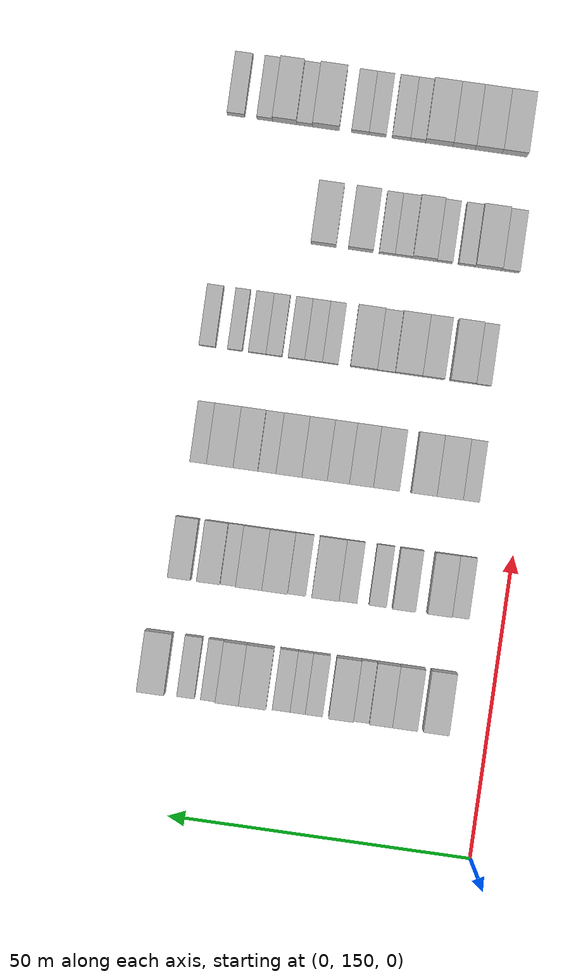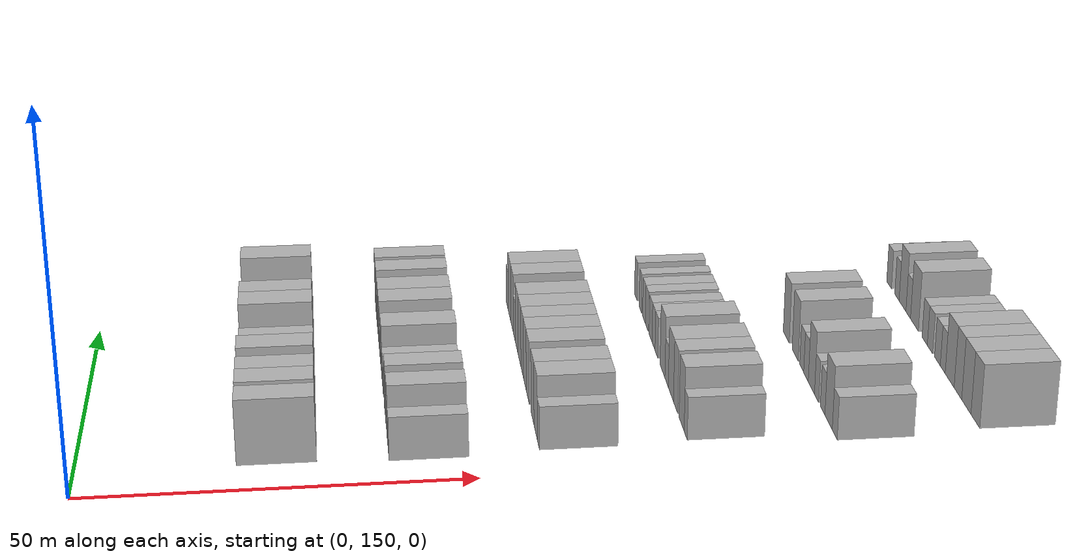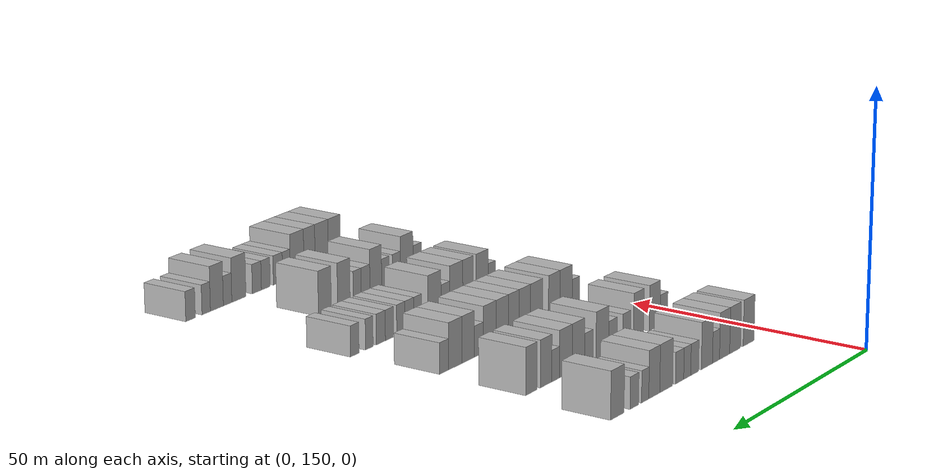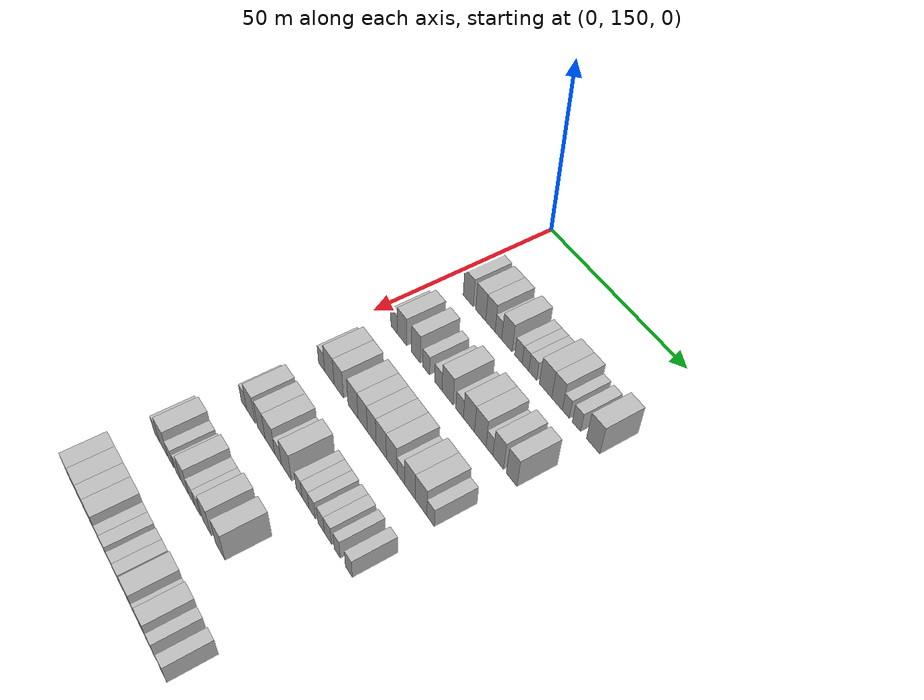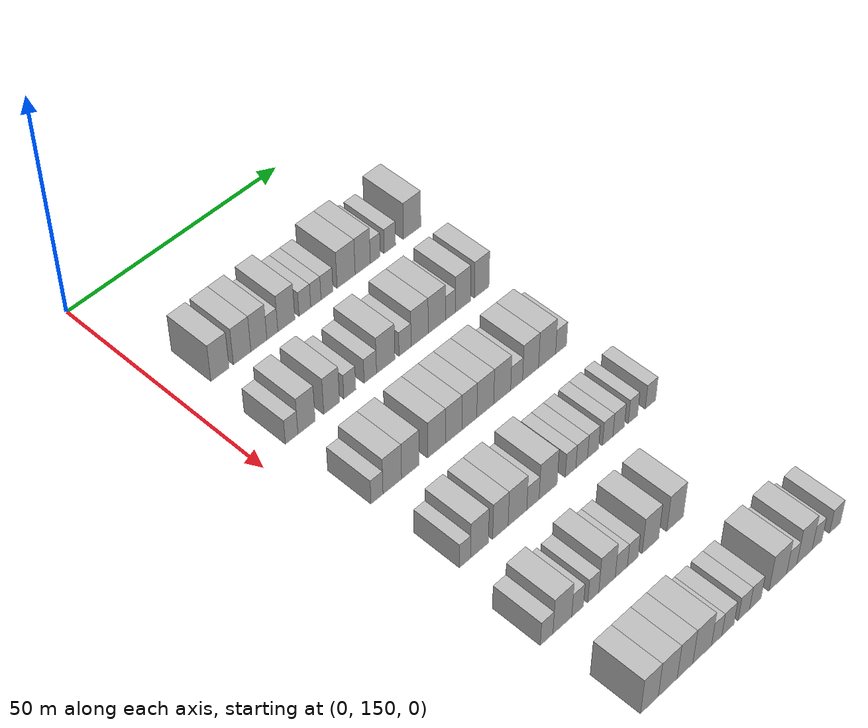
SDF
<sdf version="1.6">
 <world name="default">
  <model name="building_119">
   <static>1</static>
   <pose>25.0000 158.7007 0 0.000000 0.000000 0.000000</pose>
   <link name="link">
    <pose>0 0 4.50 0 0 0</pose>
    <collision name="collision"><geometry><box><size>10.0000 4.1789 9.0000</size></box></geometry></collision>
    <visual name="visual">
     <cast_shadows>0</cast_shadows>
     <geometry><box><size>10.0000 4.1789 9.0000</size></box></geometry>
     <material>
      <script>
       <uri>model://HANNAS_wall/materials/scripts</uri>
       <uri>model://HANNAS_wall/materials/textures</uri>
       <name>vrc/HANNAS_wall</name>
      </script>
     </material>
    </visual>
   </link>
  </model>
  <model name="building_120">
   <static>1</static>
   <pose>25.0000 163.8304 0 0.000000 0.000000 0.000000</pose>
   <link name="link">
    <pose>0 0 4.50 0 0 0</pose>
    <collision name="collision"><geometry><box><size>10.0000 4.0805 9.0000</size></box></geometry></collision>
    <visual name="visual">
     <cast_shadows>0</cast_shadows>
     <geometry><box><size>10.0000 4.0805 9.0000</size></box></geometry>
     <material>
      <script>
       <uri>model://HANNAS_wall/materials/scripts</uri>
       <uri>model://HANNAS_wall/materials/textures</uri>
       <name>vrc/HANNAS_wall</name>
      </script>
     </material>
    </visual>
   </link>
  </model>
  <model name="building_121">
   <static>1</static>
   <pose>25.0000 167.7491 0 0.000000 0.000000 0.000000</pose>
   <link name="link">
    <pose>0 0 4.50 0 0 0</pose>
    <collision name="collision"><geometry><box><size>10.0000 3.7569 9.0000</size></box></geometry></collision>
    <visual name="visual">
     <cast_shadows>0</cast_shadows>
     <geometry><box><size>10.0000 3.7569 9.0000</size></box></geometry>
     <material>
      <script>
       <uri>model://HANNAS_wall/materials/scripts</uri>
       <uri>model://HANNAS_wall/materials/textures</uri>
       <name>vrc/HANNAS_wall</name>
      </script>
     </material>
    </visual>
   </link>
  </model>
  <model name="building_122">
   <static>1</static>
   <pose>25.0000 170.9265 0 0.000000 0.000000 0.000000</pose>
   <link name="link">
    <pose>0 0 3.00 0 0 0</pose>
    <collision name="collision"><geometry><box><size>10.0000 2.5980 6.0000</size></box></geometry></collision>
    <visual name="visual">
     <cast_shadows>0</cast_shadows>
     <geometry><box><size>10.0000 2.5980 6.0000</size></box></geometry>
     <material>
      <script>
       <uri>model://HANNAS_wall/materials/scripts</uri>
       <uri>model://HANNAS_wall/materials/textures</uri>
       <name>vrc/HANNAS_wall</name>
      </script>
     </material>
    </visual>
   </link>
  </model>
  <model name="building_123">
   <static>1</static>
   <pose>25.0000 174.2566 0 0.000000 0.000000 0.000000</pose>
   <link name="link">
    <pose>0 0 4.50 0 0 0</pose>
    <collision name="collision"><geometry><box><size>10.0000 4.0622 9.0000</size></box></geometry></collision>
    <visual name="visual">
     <cast_shadows>0</cast_shadows>
     <geometry><box><size>10.0000 4.0622 9.0000</size></box></geometry>
     <material>
      <script>
       <uri>model://HANNAS_wall/materials/scripts</uri>
       <uri>model://HANNAS_wall/materials/textures</uri>
       <name>vrc/HANNAS_wall</name>
      </script>
     </material>
    </visual>
   </link>
  </model>
  <model name="building_124">
   <static>1</static>
   <pose>25.0000 178.7006 0 0.000000 0.000000 0.000000</pose>
   <link name="link">
    <pose>0 0 3.00 0 0 0</pose>
    <collision name="collision"><geometry><box><size>10.0000 2.8257 6.0000</size></box></geometry></collision>
    <visual name="visual">
     <cast_shadows>0</cast_shadows>
     <geometry><box><size>10.0000 2.8257 6.0000</size></box></geometry>
     <material>
      <script>
       <uri>model://HANNAS_wall/materials/scripts</uri>
       <uri>model://HANNAS_wall/materials/textures</uri>
       <name>vrc/HANNAS_wall</name>
      </script>
     </material>
    </visual>
   </link>
  </model>
  <model name="building_125">
   <static>1</static>
   <pose>25.0000 181.3581 0 0.000000 0.000000 0.000000</pose>
   <link name="link">
    <pose>0 0 3.00 0 0 0</pose>
    <collision name="collision"><geometry><box><size>10.0000 2.4894 6.0000</size></box></geometry></collision>
    <visual name="visual">
     <cast_shadows>0</cast_shadows>
     <geometry><box><size>10.0000 2.4894 6.0000</size></box></geometry>
     <material>
      <script>
       <uri>model://HANNAS_wall/materials/scripts</uri>
       <uri>model://HANNAS_wall/materials/textures</uri>
       <name>vrc/HANNAS_wall</name>
      </script>
     </material>
    </visual>
   </link>
  </model>
  <model name="building_126">
   <static>1</static>
   <pose>25.0000 184.0690 0 0.000000 0.000000 0.000000</pose>
   <link name="link">
    <pose>0 0 3.00 0 0 0</pose>
    <collision name="collision"><geometry><box><size>10.0000 2.9324 6.0000</size></box></geometry></collision>
    <visual name="visual">
     <cast_shadows>0</cast_shadows>
     <geometry><box><size>10.0000 2.9324 6.0000</size></box></geometry>
     <material>
      <script>
       <uri>model://HANNAS_wall/materials/scripts</uri>
       <uri>model://HANNAS_wall/materials/textures</uri>
       <name>vrc/HANNAS_wall</name>
      </script>
     </material>
    </visual>
   </link>
  </model>
  <model name="building_127">
   <static>1</static>
   <pose>25.0000 188.7733 0 0.000000 0.000000 0.000000</pose>
   <link name="link">
    <pose>0 0 4.50 0 0 0</pose>
    <collision name="collision"><geometry><box><size>10.0000 4.4763 9.0000</size></box></geometry></collision>
    <visual name="visual">
     <cast_shadows>0</cast_shadows>
     <geometry><box><size>10.0000 4.4763 9.0000</size></box></geometry>
     <material>
      <script>
       <uri>model://HANNAS_wall/materials/scripts</uri>
       <uri>model://HANNAS_wall/materials/textures</uri>
       <name>vrc/HANNAS_wall</name>
      </script>
     </material>
    </visual>
   </link>
  </model>
  <model name="building_128">
   <static>1</static>
   <pose>25.0000 192.9053 0 0.000000 0.000000 0.000000</pose>
   <link name="link">
    <pose>0 0 4.50 0 0 0</pose>
    <collision name="collision"><geometry><box><size>10.0000 3.7876 9.0000</size></box></geometry></collision>
    <visual name="visual">
     <cast_shadows>0</cast_shadows>
     <geometry><box><size>10.0000 3.7876 9.0000</size></box></geometry>
     <material>
      <script>
       <uri>model://HANNAS_wall/materials/scripts</uri>
       <uri>model://HANNAS_wall/materials/textures</uri>
       <name>vrc/HANNAS_wall</name>
      </script>
     </material>
    </visual>
   </link>
  </model>
  <model name="building_129">
   <static>1</static>
   <pose>25.0000 196.0422 0 0.000000 0.000000 0.000000</pose>
   <link name="link">
    <pose>0 0 3.00 0 0 0</pose>
    <collision name="collision"><geometry><box><size>10.0000 2.4862 6.0000</size></box></geometry></collision>
    <visual name="visual">
     <cast_shadows>0</cast_shadows>
     <geometry><box><size>10.0000 2.4862 6.0000</size></box></geometry>
     <material>
      <script>
       <uri>model://HANNAS_wall/materials/scripts</uri>
       <uri>model://HANNAS_wall/materials/textures</uri>
       <name>vrc/HANNAS_wall</name>
      </script>
     </material>
    </visual>
   </link>
  </model>
  <model name="building_130">
   <static>1</static>
   <pose>25.0000 199.7295 0 0.000000 0.000000 0.000000</pose>
   <link name="link">
    <pose>0 0 3.00 0 0 0</pose>
    <collision name="collision"><geometry><box><size>10.0000 2.8885 6.0000</size></box></geometry></collision>
    <visual name="visual">
     <cast_shadows>0</cast_shadows>
     <geometry><box><size>10.0000 2.8885 6.0000</size></box></geometry>
     <material>
      <script>
       <uri>model://HANNAS_wall/materials/scripts</uri>
       <uri>model://HANNAS_wall/materials/textures</uri>
       <name>vrc/HANNAS_wall</name>
      </script>
     </material>
    </visual>
   </link>
  </model>
  <model name="building_131">
   <static>1</static>
   <pose>25.0000 205.4155 0 0.000000 0.000000 0.000000</pose>
   <link name="link">
    <pose>0 0 4.50 0 0 0</pose>
    <collision name="collision"><geometry><box><size>10.0000 4.4834 9.0000</size></box></geometry></collision>
    <visual name="visual">
     <cast_shadows>0</cast_shadows>
     <geometry><box><size>10.0000 4.4834 9.0000</size></box></geometry>
     <material>
      <script>
       <uri>model://HANNAS_wall/materials/scripts</uri>
       <uri>model://HANNAS_wall/materials/textures</uri>
       <name>vrc/HANNAS_wall</name>
      </script>
     </material>
    </visual>
   </link>
  </model>
  <model name="building_277">
   <static>1</static>
   <pose>44.0000 157.3566 0 0.000000 0.000000 0.000000</pose>
   <link name="link">
    <pose>0 0 3.00 0 0 0</pose>
    <collision name="collision"><geometry><box><size>10.0000 2.8651 6.0000</size></box></geometry></collision>
    <visual name="visual">
     <cast_shadows>0</cast_shadows>
     <geometry><box><size>10.0000 2.8651 6.0000</size></box></geometry>
     <material>
      <script>
       <uri>model://HANNAS_wall/materials/scripts</uri>
       <uri>model://HANNAS_wall/materials/textures</uri>
       <name>vrc/HANNAS_wall</name>
      </script>
     </material>
    </visual>
   </link>
  </model>
  <model name="building_278">
   <static>1</static>
   <pose>44.0000 160.7823 0 0.000000 0.000000 0.000000</pose>
   <link name="link">
    <pose>0 0 4.50 0 0 0</pose>
    <collision name="collision"><geometry><box><size>10.0000 3.9865 9.0000</size></box></geometry></collision>
    <visual name="visual">
     <cast_shadows>0</cast_shadows>
     <geometry><box><size>10.0000 3.9865 9.0000</size></box></geometry>
     <material>
      <script>
       <uri>model://HANNAS_wall/materials/scripts</uri>
       <uri>model://HANNAS_wall/materials/textures</uri>
       <name>vrc/HANNAS_wall</name>
      </script>
     </material>
    </visual>
   </link>
  </model>
  <model name="building_279">
   <static>1</static>
   <pose>44.0000 166.6259 0 0.000000 0.000000 0.000000</pose>
   <link name="link">
    <pose>0 0 4.50 0 0 0</pose>
    <collision name="collision"><geometry><box><size>10.0000 3.7007 9.0000</size></box></geometry></collision>
    <visual name="visual">
     <cast_shadows>0</cast_shadows>
     <geometry><box><size>10.0000 3.7007 9.0000</size></box></geometry>
     <material>
      <script>
       <uri>model://HANNAS_wall/materials/scripts</uri>
       <uri>model://HANNAS_wall/materials/textures</uri>
       <name>vrc/HANNAS_wall</name>
      </script>
     </material>
    </visual>
   </link>
  </model>
  <model name="building_280">
   <static>1</static>
   <pose>44.0000 170.8899 0 0.000000 0.000000 0.000000</pose>
   <link name="link">
    <pose>0 0 3.00 0 0 0</pose>
    <collision name="collision"><geometry><box><size>10.0000 2.8272 6.0000</size></box></geometry></collision>
    <visual name="visual">
     <cast_shadows>0</cast_shadows>
     <geometry><box><size>10.0000 2.8272 6.0000</size></box></geometry>
     <material>
      <script>
       <uri>model://HANNAS_wall/materials/scripts</uri>
       <uri>model://HANNAS_wall/materials/textures</uri>
       <name>vrc/HANNAS_wall</name>
      </script>
     </material>
    </visual>
   </link>
  </model>
  <model name="building_281">
   <static>1</static>
   <pose>44.0000 175.7847 0 0.000000 0.000000 0.000000</pose>
   <link name="link">
    <pose>0 0 3.00 0 0 0</pose>
    <collision name="collision"><geometry><box><size>10.0000 2.9625 6.0000</size></box></geometry></collision>
    <visual name="visual">
     <cast_shadows>0</cast_shadows>
     <geometry><box><size>10.0000 2.9625 6.0000</size></box></geometry>
     <material>
      <script>
       <uri>model://HANNAS_wall/materials/scripts</uri>
       <uri>model://HANNAS_wall/materials/textures</uri>
       <name>vrc/HANNAS_wall</name>
      </script>
     </material>
    </visual>
   </link>
  </model>
  <model name="building_282">
   <static>1</static>
   <pose>44.0000 179.4912 0 0.000000 0.000000 0.000000</pose>
   <link name="link">
    <pose>0 0 4.50 0 0 0</pose>
    <collision name="collision"><geometry><box><size>10.0000 4.4505 9.0000</size></box></geometry></collision>
    <visual name="visual">
     <cast_shadows>0</cast_shadows>
     <geometry><box><size>10.0000 4.4505 9.0000</size></box></geometry>
     <material>
      <script>
       <uri>model://HANNAS_wall/materials/scripts</uri>
       <uri>model://HANNAS_wall/materials/textures</uri>
       <name>vrc/HANNAS_wall</name>
      </script>
     </material>
    </visual>
   </link>
  </model>
  <model name="building_283">
   <static>1</static>
   <pose>44.0000 184.1906 0 0.000000 0.000000 0.000000</pose>
   <link name="link">
    <pose>0 0 3.00 0 0 0</pose>
    <collision name="collision"><geometry><box><size>10.0000 2.9483 6.0000</size></box></geometry></collision>
    <visual name="visual">
     <cast_shadows>0</cast_shadows>
     <geometry><box><size>10.0000 2.9483 6.0000</size></box></geometry>
     <material>
      <script>
       <uri>model://HANNAS_wall/materials/scripts</uri>
       <uri>model://HANNAS_wall/materials/textures</uri>
       <name>vrc/HANNAS_wall</name>
      </script>
     </material>
    </visual>
   </link>
  </model>
  <model name="building_284">
   <static>1</static>
   <pose>44.0000 187.7703 0 0.000000 0.000000 0.000000</pose>
   <link name="link">
    <pose>0 0 4.50 0 0 0</pose>
    <collision name="collision"><geometry><box><size>10.0000 4.2110 9.0000</size></box></geometry></collision>
    <visual name="visual">
     <cast_shadows>0</cast_shadows>
     <geometry><box><size>10.0000 4.2110 9.0000</size></box></geometry>
     <material>
      <script>
       <uri>model://HANNAS_wall/materials/scripts</uri>
       <uri>model://HANNAS_wall/materials/textures</uri>
       <name>vrc/HANNAS_wall</name>
      </script>
     </material>
    </visual>
   </link>
  </model>
  <model name="building_285">
   <static>1</static>
   <pose>44.0000 192.0157 0 0.000000 0.000000 0.000000</pose>
   <link name="link">
    <pose>0 0 4.50 0 0 0</pose>
    <collision name="collision"><geometry><box><size>10.0000 4.2798 9.0000</size></box></geometry></collision>
    <visual name="visual">
     <cast_shadows>0</cast_shadows>
     <geometry><box><size>10.0000 4.2798 9.0000</size></box></geometry>
     <material>
      <script>
       <uri>model://HANNAS_wall/materials/scripts</uri>
       <uri>model://HANNAS_wall/materials/textures</uri>
       <name>vrc/HANNAS_wall</name>
      </script>
     </material>
    </visual>
   </link>
  </model>
  <model name="building_286">
   <static>1</static>
   <pose>44.0000 195.4301 0 0.000000 0.000000 0.000000</pose>
   <link name="link">
    <pose>0 0 3.00 0 0 0</pose>
    <collision name="collision"><geometry><box><size>10.0000 2.5489 6.0000</size></box></geometry></collision>
    <visual name="visual">
     <cast_shadows>0</cast_shadows>
     <geometry><box><size>10.0000 2.5489 6.0000</size></box></geometry>
     <material>
      <script>
       <uri>model://HANNAS_wall/materials/scripts</uri>
       <uri>model://HANNAS_wall/materials/textures</uri>
       <name>vrc/HANNAS_wall</name>
      </script>
     </material>
    </visual>
   </link>
  </model>
  <model name="building_287">
   <static>1</static>
   <pose>44.0000 198.6184 0 0.000000 0.000000 0.000000</pose>
   <link name="link">
    <pose>0 0 4.50 0 0 0</pose>
    <collision name="collision"><geometry><box><size>10.0000 3.8277 9.0000</size></box></geometry></collision>
    <visual name="visual">
     <cast_shadows>0</cast_shadows>
     <geometry><box><size>10.0000 3.8277 9.0000</size></box></geometry>
     <material>
      <script>
       <uri>model://HANNAS_wall/materials/scripts</uri>
       <uri>model://HANNAS_wall/materials/textures</uri>
       <name>vrc/HANNAS_wall</name>
      </script>
     </material>
    </visual>
   </link>
  </model>
  <model name="building_288">
   <static>1</static>
   <pose>44.0000 203.3996 0 0.000000 0.000000 0.000000</pose>
   <link name="link">
    <pose>0 0 4.50 0 0 0</pose>
    <collision name="collision"><geometry><box><size>10.0000 3.7348 9.0000</size></box></geometry></collision>
    <visual name="visual">
     <cast_shadows>0</cast_shadows>
     <geometry><box><size>10.0000 3.7348 9.0000</size></box></geometry>
     <material>
      <script>
       <uri>model://HANNAS_wall/materials/scripts</uri>
       <uri>model://HANNAS_wall/materials/textures</uri>
       <name>vrc/HANNAS_wall</name>
      </script>
     </material>
    </visual>
   </link>
  </model>
  <model name="building_454">
   <static>1</static>
   <pose>63.0000 158.2858 0 0.000000 0.000000 0.000000</pose>
   <link name="link">
    <pose>0 0 3.00 0 0 0</pose>
    <collision name="collision"><geometry><box><size>10.0000 2.7681 6.0000</size></box></geometry></collision>
    <visual name="visual">
     <cast_shadows>0</cast_shadows>
     <geometry><box><size>10.0000 2.7681 6.0000</size></box></geometry>
     <material>
      <script>
       <uri>model://HANNAS_wall/materials/scripts</uri>
       <uri>model://HANNAS_wall/materials/textures</uri>
       <name>vrc/HANNAS_wall</name>
      </script>
     </material>
    </visual>
   </link>
  </model>
  <model name="building_455">
   <static>1</static>
   <pose>63.0000 161.8156 0 0.000000 0.000000 0.000000</pose>
   <link name="link">
    <pose>0 0 4.50 0 0 0</pose>
    <collision name="collision"><geometry><box><size>10.0000 4.2914 9.0000</size></box></geometry></collision>
    <visual name="visual">
     <cast_shadows>0</cast_shadows>
     <geometry><box><size>10.0000 4.2914 9.0000</size></box></geometry>
     <material>
      <script>
       <uri>model://HANNAS_wall/materials/scripts</uri>
       <uri>model://HANNAS_wall/materials/textures</uri>
       <name>vrc/HANNAS_wall</name>
      </script>
     </material>
    </visual>
   </link>
  </model>
  <model name="building_456">
   <static>1</static>
   <pose>63.0000 166.0190 0 0.000000 0.000000 0.000000</pose>
   <link name="link">
    <pose>0 0 4.50 0 0 0</pose>
    <collision name="collision"><geometry><box><size>10.0000 4.1155 9.0000</size></box></geometry></collision>
    <visual name="visual">
     <cast_shadows>0</cast_shadows>
     <geometry><box><size>10.0000 4.1155 9.0000</size></box></geometry>
     <material>
      <script>
       <uri>model://HANNAS_wall/materials/scripts</uri>
       <uri>model://HANNAS_wall/materials/textures</uri>
       <name>vrc/HANNAS_wall</name>
      </script>
     </material>
    </visual>
   </link>
  </model>
  <model name="building_457">
   <static>1</static>
   <pose>63.0000 172.2024 0 0.000000 0.000000 0.000000</pose>
   <link name="link">
    <pose>0 0 4.50 0 0 0</pose>
    <collision name="collision"><geometry><box><size>10.0000 4.2512 9.0000</size></box></geometry></collision>
    <visual name="visual">
     <cast_shadows>0</cast_shadows>
     <geometry><box><size>10.0000 4.2512 9.0000</size></box></geometry>
     <material>
      <script>
       <uri>model://HANNAS_wall/materials/scripts</uri>
       <uri>model://HANNAS_wall/materials/textures</uri>
       <name>vrc/HANNAS_wall</name>
      </script>
     </material>
    </visual>
   </link>
  </model>
  <model name="building_458">
   <static>1</static>
   <pose>63.0000 176.2858 0 0.000000 0.000000 0.000000</pose>
   <link name="link">
    <pose>0 0 4.50 0 0 0</pose>
    <collision name="collision"><geometry><box><size>10.0000 3.9157 9.0000</size></box></geometry></collision>
    <visual name="visual">
     <cast_shadows>0</cast_shadows>
     <geometry><box><size>10.0000 3.9157 9.0000</size></box></geometry>
     <material>
      <script>
       <uri>model://HANNAS_wall/materials/scripts</uri>
       <uri>model://HANNAS_wall/materials/textures</uri>
       <name>vrc/HANNAS_wall</name>
      </script>
     </material>
    </visual>
   </link>
  </model>
  <model name="building_459">
   <static>1</static>
   <pose>63.0000 180.0574 0 0.000000 0.000000 0.000000</pose>
   <link name="link">
    <pose>0 0 4.50 0 0 0</pose>
    <collision name="collision"><geometry><box><size>10.0000 3.6274 9.0000</size></box></geometry></collision>
    <visual name="visual">
     <cast_shadows>0</cast_shadows>
     <geometry><box><size>10.0000 3.6274 9.0000</size></box></geometry>
     <material>
      <script>
       <uri>model://HANNAS_wall/materials/scripts</uri>
       <uri>model://HANNAS_wall/materials/textures</uri>
       <name>vrc/HANNAS_wall</name>
      </script>
     </material>
    </visual>
   </link>
  </model>
  <model name="building_460">
   <static>1</static>
   <pose>63.0000 183.9379 0 0.000000 0.000000 0.000000</pose>
   <link name="link">
    <pose>0 0 4.50 0 0 0</pose>
    <collision name="collision"><geometry><box><size>10.0000 4.1336 9.0000</size></box></geometry></collision>
    <visual name="visual">
     <cast_shadows>0</cast_shadows>
     <geometry><box><size>10.0000 4.1336 9.0000</size></box></geometry>
     <material>
      <script>
       <uri>model://HANNAS_wall/materials/scripts</uri>
       <uri>model://HANNAS_wall/materials/textures</uri>
       <name>vrc/HANNAS_wall</name>
      </script>
     </material>
    </visual>
   </link>
  </model>
  <model name="building_461">
   <static>1</static>
   <pose>63.0000 188.1154 0 0.000000 0.000000 0.000000</pose>
   <link name="link">
    <pose>0 0 4.50 0 0 0</pose>
    <collision name="collision"><geometry><box><size>10.0000 4.2213 9.0000</size></box></geometry></collision>
    <visual name="visual">
     <cast_shadows>0</cast_shadows>
     <geometry><box><size>10.0000 4.2213 9.0000</size></box></geometry>
     <material>
      <script>
       <uri>model://HANNAS_wall/materials/scripts</uri>
       <uri>model://HANNAS_wall/materials/textures</uri>
       <name>vrc/HANNAS_wall</name>
      </script>
     </material>
    </visual>
   </link>
  </model>
  <model name="building_462">
   <static>1</static>
   <pose>63.0000 191.7105 0 0.000000 0.000000 0.000000</pose>
   <link name="link">
    <pose>0 0 3.00 0 0 0</pose>
    <collision name="collision"><geometry><box><size>10.0000 2.9689 6.0000</size></box></geometry></collision>
    <visual name="visual">
     <cast_shadows>0</cast_shadows>
     <geometry><box><size>10.0000 2.9689 6.0000</size></box></geometry>
     <material>
      <script>
       <uri>model://HANNAS_wall/materials/scripts</uri>
       <uri>model://HANNAS_wall/materials/textures</uri>
       <name>vrc/HANNAS_wall</name>
      </script>
     </material>
    </visual>
   </link>
  </model>
  <model name="building_463">
   <static>1</static>
   <pose>63.0000 195.2117 0 0.000000 0.000000 0.000000</pose>
   <link name="link">
    <pose>0 0 4.50 0 0 0</pose>
    <collision name="collision"><geometry><box><size>10.0000 4.0336 9.0000</size></box></geometry></collision>
    <visual name="visual">
     <cast_shadows>0</cast_shadows>
     <geometry><box><size>10.0000 4.0336 9.0000</size></box></geometry>
     <material>
      <script>
       <uri>model://HANNAS_wall/materials/scripts</uri>
       <uri>model://HANNAS_wall/materials/textures</uri>
       <name>vrc/HANNAS_wall</name>
      </script>
     </material>
    </visual>
   </link>
  </model>
  <model name="building_464">
   <static>1</static>
   <pose>63.0000 199.3994 0 0.000000 0.000000 0.000000</pose>
   <link name="link">
    <pose>0 0 4.50 0 0 0</pose>
    <collision name="collision"><geometry><box><size>10.0000 4.3416 9.0000</size></box></geometry></collision>
    <visual name="visual">
     <cast_shadows>0</cast_shadows>
     <geometry><box><size>10.0000 4.3416 9.0000</size></box></geometry>
     <material>
      <script>
       <uri>model://HANNAS_wall/materials/scripts</uri>
       <uri>model://HANNAS_wall/materials/textures</uri>
       <name>vrc/HANNAS_wall</name>
      </script>
     </material>
    </visual>
   </link>
  </model>
  <model name="building_465">
   <static>1</static>
   <pose>63.0000 202.9749 0 0.000000 0.000000 0.000000</pose>
   <link name="link">
    <pose>0 0 3.00 0 0 0</pose>
    <collision name="collision"><geometry><box><size>10.0000 2.8095 6.0000</size></box></geometry></collision>
    <visual name="visual">
     <cast_shadows>0</cast_shadows>
     <geometry><box><size>10.0000 2.8095 6.0000</size></box></geometry>
     <material>
      <script>
       <uri>model://HANNAS_wall/materials/scripts</uri>
       <uri>model://HANNAS_wall/materials/textures</uri>
       <name>vrc/HANNAS_wall</name>
      </script>
     </material>
    </visual>
   </link>
  </model>
  <model name="building_621">
   <static>1</static>
   <pose>82.0000 158.8840 0 0.000000 0.000000 0.000000</pose>
   <link name="link">
    <pose>0 0 3.00 0 0 0</pose>
    <collision name="collision"><geometry><box><size>10.0000 2.5342 6.0000</size></box></geometry></collision>
    <visual name="visual">
     <cast_shadows>0</cast_shadows>
     <geometry><box><size>10.0000 2.5342 6.0000</size></box></geometry>
     <material>
      <script>
       <uri>model://HANNAS_wall/materials/scripts</uri>
       <uri>model://HANNAS_wall/materials/textures</uri>
       <name>vrc/HANNAS_wall</name>
      </script>
     </material>
    </visual>
   </link>
  </model>
  <model name="building_622">
   <static>1</static>
   <pose>82.0000 162.2259 0 0.000000 0.000000 0.000000</pose>
   <link name="link">
    <pose>0 0 4.50 0 0 0</pose>
    <collision name="collision"><geometry><box><size>10.0000 4.1495 9.0000</size></box></geometry></collision>
    <visual name="visual">
     <cast_shadows>0</cast_shadows>
     <geometry><box><size>10.0000 4.1495 9.0000</size></box></geometry>
     <material>
      <script>
       <uri>model://HANNAS_wall/materials/scripts</uri>
       <uri>model://HANNAS_wall/materials/textures</uri>
       <name>vrc/HANNAS_wall</name>
      </script>
     </material>
    </visual>
   </link>
  </model>
  <model name="building_623">
   <static>1</static>
   <pose>82.0000 167.1146 0 0.000000 0.000000 0.000000</pose>
   <link name="link">
    <pose>0 0 4.50 0 0 0</pose>
    <collision name="collision"><geometry><box><size>10.0000 3.6280 9.0000</size></box></geometry></collision>
    <visual name="visual">
     <cast_shadows>0</cast_shadows>
     <geometry><box><size>10.0000 3.6280 9.0000</size></box></geometry>
     <material>
      <script>
       <uri>model://HANNAS_wall/materials/scripts</uri>
       <uri>model://HANNAS_wall/materials/textures</uri>
       <name>vrc/HANNAS_wall</name>
      </script>
     </material>
    </visual>
   </link>
  </model>
  <model name="building_624">
   <static>1</static>
   <pose>82.0000 171.1470 0 0.000000 0.000000 0.000000</pose>
   <link name="link">
    <pose>0 0 4.50 0 0 0</pose>
    <collision name="collision"><geometry><box><size>10.0000 4.4368 9.0000</size></box></geometry></collision>
    <visual name="visual">
     <cast_shadows>0</cast_shadows>
     <geometry><box><size>10.0000 4.4368 9.0000</size></box></geometry>
     <material>
      <script>
       <uri>model://HANNAS_wall/materials/scripts</uri>
       <uri>model://HANNAS_wall/materials/textures</uri>
       <name>vrc/HANNAS_wall</name>
      </script>
     </material>
    </visual>
   </link>
  </model>
  <model name="building_625">
   <static>1</static>
   <pose>82.0000 174.8436 0 0.000000 0.000000 0.000000</pose>
   <link name="link">
    <pose>0 0 3.00 0 0 0</pose>
    <collision name="collision"><geometry><box><size>10.0000 2.9563 6.0000</size></box></geometry></collision>
    <visual name="visual">
     <cast_shadows>0</cast_shadows>
     <geometry><box><size>10.0000 2.9563 6.0000</size></box></geometry>
     <material>
      <script>
       <uri>model://HANNAS_wall/materials/scripts</uri>
       <uri>model://HANNAS_wall/materials/textures</uri>
       <name>vrc/HANNAS_wall</name>
      </script>
     </material>
    </visual>
   </link>
  </model>
  <model name="building_626">
   <static>1</static>
   <pose>82.0000 178.5181 0 0.000000 0.000000 0.000000</pose>
   <link name="link">
    <pose>0 0 4.50 0 0 0</pose>
    <collision name="collision"><geometry><box><size>10.0000 4.3927 9.0000</size></box></geometry></collision>
    <visual name="visual">
     <cast_shadows>0</cast_shadows>
     <geometry><box><size>10.0000 4.3927 9.0000</size></box></geometry>
     <material>
      <script>
       <uri>model://HANNAS_wall/materials/scripts</uri>
       <uri>model://HANNAS_wall/materials/textures</uri>
       <name>vrc/HANNAS_wall</name>
      </script>
     </material>
    </visual>
   </link>
  </model>
  <model name="building_627">
   <static>1</static>
   <pose>82.0000 184.0088 0 0.000000 0.000000 0.000000</pose>
   <link name="link">
    <pose>0 0 3.00 0 0 0</pose>
    <collision name="collision"><geometry><box><size>10.0000 2.5886 6.0000</size></box></geometry></collision>
    <visual name="visual">
     <cast_shadows>0</cast_shadows>
     <geometry><box><size>10.0000 2.5886 6.0000</size></box></geometry>
     <material>
      <script>
       <uri>model://HANNAS_wall/materials/scripts</uri>
       <uri>model://HANNAS_wall/materials/textures</uri>
       <name>vrc/HANNAS_wall</name>
      </script>
     </material>
    </visual>
   </link>
  </model>
  <model name="building_628">
   <static>1</static>
   <pose>82.0000 186.7521 0 0.000000 0.000000 0.000000</pose>
   <link name="link">
    <pose>0 0 3.00 0 0 0</pose>
    <collision name="collision"><geometry><box><size>10.0000 2.8982 6.0000</size></box></geometry></collision>
    <visual name="visual">
     <cast_shadows>0</cast_shadows>
     <geometry><box><size>10.0000 2.8982 6.0000</size></box></geometry>
     <material>
      <script>
       <uri>model://HANNAS_wall/materials/scripts</uri>
       <uri>model://HANNAS_wall/materials/textures</uri>
       <name>vrc/HANNAS_wall</name>
      </script>
     </material>
    </visual>
   </link>
  </model>
  <model name="building_629">
   <static>1</static>
   <pose>82.0000 189.5658 0 0.000000 0.000000 0.000000</pose>
   <link name="link">
    <pose>0 0 3.00 0 0 0</pose>
    <collision name="collision"><geometry><box><size>10.0000 2.7293 6.0000</size></box></geometry></collision>
    <visual name="visual">
     <cast_shadows>0</cast_shadows>
     <geometry><box><size>10.0000 2.7293 6.0000</size></box></geometry>
     <material>
      <script>
       <uri>model://HANNAS_wall/materials/scripts</uri>
       <uri>model://HANNAS_wall/materials/textures</uri>
       <name>vrc/HANNAS_wall</name>
      </script>
     </material>
    </visual>
   </link>
  </model>
  <model name="building_630">
   <static>1</static>
   <pose>82.0000 193.2478 0 0.000000 0.000000 0.000000</pose>
   <link name="link">
    <pose>0 0 3.00 0 0 0</pose>
    <collision name="collision"><geometry><box><size>10.0000 2.6347 6.0000</size></box></geometry></collision>
    <visual name="visual">
     <cast_shadows>0</cast_shadows>
     <geometry><box><size>10.0000 2.6347 6.0000</size></box></geometry>
     <material>
      <script>
       <uri>model://HANNAS_wall/materials/scripts</uri>
       <uri>model://HANNAS_wall/materials/textures</uri>
       <name>vrc/HANNAS_wall</name>
      </script>
     </material>
    </visual>
   </link>
  </model>
  <model name="building_631">
   <static>1</static>
   <pose>82.0000 196.0153 0 0.000000 0.000000 0.000000</pose>
   <link name="link">
    <pose>0 0 3.00 0 0 0</pose>
    <collision name="collision"><geometry><box><size>10.0000 2.9003 6.0000</size></box></geometry></collision>
    <visual name="visual">
     <cast_shadows>0</cast_shadows>
     <geometry><box><size>10.0000 2.9003 6.0000</size></box></geometry>
     <material>
      <script>
       <uri>model://HANNAS_wall/materials/scripts</uri>
       <uri>model://HANNAS_wall/materials/textures</uri>
       <name>vrc/HANNAS_wall</name>
      </script>
     </material>
    </visual>
   </link>
  </model>
  <model name="building_632">
   <static>1</static>
   <pose>82.0000 199.6669 0 0.000000 0.000000 0.000000</pose>
   <link name="link">
    <pose>0 0 3.00 0 0 0</pose>
    <collision name="collision"><geometry><box><size>10.0000 2.4029 6.0000</size></box></geometry></collision>
    <visual name="visual">
     <cast_shadows>0</cast_shadows>
     <geometry><box><size>10.0000 2.4029 6.0000</size></box></geometry>
     <material>
      <script>
       <uri>model://HANNAS_wall/materials/scripts</uri>
       <uri>model://HANNAS_wall/materials/textures</uri>
       <name>vrc/HANNAS_wall</name>
      </script>
     </material>
    </visual>
   </link>
  </model>
  <model name="building_633">
   <static>1</static>
   <pose>82.0000 204.2068 0 0.000000 0.000000 0.000000</pose>
   <link name="link">
    <pose>0 0 3.00 0 0 0</pose>
    <collision name="collision"><geometry><box><size>10.0000 2.6769 6.0000</size></box></geometry></collision>
    <visual name="visual">
     <cast_shadows>0</cast_shadows>
     <geometry><box><size>10.0000 2.6769 6.0000</size></box></geometry>
     <material>
      <script>
       <uri>model://HANNAS_wall/materials/scripts</uri>
       <uri>model://HANNAS_wall/materials/textures</uri>
       <name>vrc/HANNAS_wall</name>
      </script>
     </material>
    </visual>
   </link>
  </model>
  <model name="building_797">
   <static>1</static>
   <pose>101.0000 157.0201 0 0.000000 0.000000 0.000000</pose>
   <link name="link">
    <pose>0 0 3.00 0 0 0</pose>
    <collision name="collision"><geometry><box><size>10.0000 2.8885 6.0000</size></box></geometry></collision>
    <visual name="visual">
     <cast_shadows>0</cast_shadows>
     <geometry><box><size>10.0000 2.8885 6.0000</size></box></geometry>
     <material>
      <script>
       <uri>model://HANNAS_wall/materials/scripts</uri>
       <uri>model://HANNAS_wall/materials/textures</uri>
       <name>vrc/HANNAS_wall</name>
      </script>
     </material>
    </visual>
   </link>
  </model>
  <model name="building_798">
   <static>1</static>
   <pose>101.0000 160.6431 0 0.000000 0.000000 0.000000</pose>
   <link name="link">
    <pose>0 0 4.50 0 0 0</pose>
    <collision name="collision"><geometry><box><size>10.0000 4.3575 9.0000</size></box></geometry></collision>
    <visual name="visual">
     <cast_shadows>0</cast_shadows>
     <geometry><box><size>10.0000 4.3575 9.0000</size></box></geometry>
     <material>
      <script>
       <uri>model://HANNAS_wall/materials/scripts</uri>
       <uri>model://HANNAS_wall/materials/textures</uri>
       <name>vrc/HANNAS_wall</name>
      </script>
     </material>
    </visual>
   </link>
  </model>
  <model name="building_799">
   <static>1</static>
   <pose>101.0000 164.2028 0 0.000000 0.000000 0.000000</pose>
   <link name="link">
    <pose>0 0 3.00 0 0 0</pose>
    <collision name="collision"><geometry><box><size>10.0000 2.7619 6.0000</size></box></geometry></collision>
    <visual name="visual">
     <cast_shadows>0</cast_shadows>
     <geometry><box><size>10.0000 2.7619 6.0000</size></box></geometry>
     <material>
      <script>
       <uri>model://HANNAS_wall/materials/scripts</uri>
       <uri>model://HANNAS_wall/materials/textures</uri>
       <name>vrc/HANNAS_wall</name>
      </script>
     </material>
    </visual>
   </link>
  </model>
  <model name="building_800">
   <static>1</static>
   <pose>101.0000 167.8843 0 0.000000 0.000000 0.000000</pose>
   <link name="link">
    <pose>0 0 3.00 0 0 0</pose>
    <collision name="collision"><geometry><box><size>10.0000 2.6012 6.0000</size></box></geometry></collision>
    <visual name="visual">
     <cast_shadows>0</cast_shadows>
     <geometry><box><size>10.0000 2.6012 6.0000</size></box></geometry>
     <material>
      <script>
       <uri>model://HANNAS_wall/materials/scripts</uri>
       <uri>model://HANNAS_wall/materials/textures</uri>
       <name>vrc/HANNAS_wall</name>
      </script>
     </material>
    </visual>
   </link>
  </model>
  <model name="building_801">
   <static>1</static>
   <pose>101.0000 171.1463 0 0.000000 0.000000 0.000000</pose>
   <link name="link">
    <pose>0 0 4.50 0 0 0</pose>
    <collision name="collision"><geometry><box><size>10.0000 3.9227 9.0000</size></box></geometry></collision>
    <visual name="visual">
     <cast_shadows>0</cast_shadows>
     <geometry><box><size>10.0000 3.9227 9.0000</size></box></geometry>
     <material>
      <script>
       <uri>model://HANNAS_wall/materials/scripts</uri>
       <uri>model://HANNAS_wall/materials/textures</uri>
       <name>vrc/HANNAS_wall</name>
      </script>
     </material>
    </visual>
   </link>
  </model>
  <model name="building_802">
   <static>1</static>
   <pose>101.0000 174.5785 0 0.000000 0.000000 0.000000</pose>
   <link name="link">
    <pose>0 0 3.00 0 0 0</pose>
    <collision name="collision"><geometry><box><size>10.0000 2.9418 6.0000</size></box></geometry></collision>
    <visual name="visual">
     <cast_shadows>0</cast_shadows>
     <geometry><box><size>10.0000 2.9418 6.0000</size></box></geometry>
     <material>
      <script>
       <uri>model://HANNAS_wall/materials/scripts</uri>
       <uri>model://HANNAS_wall/materials/textures</uri>
       <name>vrc/HANNAS_wall</name>
      </script>
     </material>
    </visual>
   </link>
  </model>
  <model name="building_803">
   <static>1</static>
   <pose>101.0000 177.3453 0 0.000000 0.000000 0.000000</pose>
   <link name="link">
    <pose>0 0 3.00 0 0 0</pose>
    <collision name="collision"><geometry><box><size>10.0000 2.5918 6.0000</size></box></geometry></collision>
    <visual name="visual">
     <cast_shadows>0</cast_shadows>
     <geometry><box><size>10.0000 2.5918 6.0000</size></box></geometry>
     <material>
      <script>
       <uri>model://HANNAS_wall/materials/scripts</uri>
       <uri>model://HANNAS_wall/materials/textures</uri>
       <name>vrc/HANNAS_wall</name>
      </script>
     </material>
    </visual>
   </link>
  </model>
  <model name="building_804">
   <static>1</static>
   <pose>101.0000 181.6808 0 0.000000 0.000000 0.000000</pose>
   <link name="link">
    <pose>0 0 4.50 0 0 0</pose>
    <collision name="collision"><geometry><box><size>10.0000 4.0791 9.0000</size></box></geometry></collision>
    <visual name="visual">
     <cast_shadows>0</cast_shadows>
     <geometry><box><size>10.0000 4.0791 9.0000</size></box></geometry>
     <material>
      <script>
       <uri>model://HANNAS_wall/materials/scripts</uri>
       <uri>model://HANNAS_wall/materials/textures</uri>
       <name>vrc/HANNAS_wall</name>
      </script>
     </material>
    </visual>
   </link>
  </model>
  <model name="building_805">
   <static>1</static>
   <pose>101.0000 187.7872 0 0.000000 0.000000 0.000000</pose>
   <link name="link">
    <pose>0 0 4.50 0 0 0</pose>
    <collision name="collision"><geometry><box><size>10.0000 4.1337 9.0000</size></box></geometry></collision>
    <visual name="visual">
     <cast_shadows>0</cast_shadows>
     <geometry><box><size>10.0000 4.1337 9.0000</size></box></geometry>
     <material>
      <script>
       <uri>model://HANNAS_wall/materials/scripts</uri>
       <uri>model://HANNAS_wall/materials/textures</uri>
       <name>vrc/HANNAS_wall</name>
      </script>
     </material>
    </visual>
   </link>
  </model>
  <model name="building_964">
   <static>1</static>
   <pose>120.0000 158.9636 0 0.000000 0.000000 0.000000</pose>
   <link name="link">
    <pose>0 0 4.50 0 0 0</pose>
    <collision name="collision"><geometry><box><size>10.0000 4.1128 9.0000</size></box></geometry></collision>
    <visual name="visual">
     <cast_shadows>0</cast_shadows>
     <geometry><box><size>10.0000 4.1128 9.0000</size></box></geometry>
     <material>
      <script>
       <uri>model://HANNAS_wall/materials/scripts</uri>
       <uri>model://HANNAS_wall/materials/textures</uri>
       <name>vrc/HANNAS_wall</name>
      </script>
     </material>
    </visual>
   </link>
  </model>
  <model name="building_965">
   <static>1</static>
   <pose>120.0000 163.2414 0 0.000000 0.000000 0.000000</pose>
   <link name="link">
    <pose>0 0 4.50 0 0 0</pose>
    <collision name="collision"><geometry><box><size>10.0000 4.4429 9.0000</size></box></geometry></collision>
    <visual name="visual">
     <cast_shadows>0</cast_shadows>
     <geometry><box><size>10.0000 4.4429 9.0000</size></box></geometry>
     <material>
      <script>
       <uri>model://HANNAS_wall/materials/scripts</uri>
       <uri>model://HANNAS_wall/materials/textures</uri>
       <name>vrc/HANNAS_wall</name>
      </script>
     </material>
    </visual>
   </link>
  </model>
  <model name="building_966">
   <static>1</static>
   <pose>120.0000 167.3138 0 0.000000 0.000000 0.000000</pose>
   <link name="link">
    <pose>0 0 4.50 0 0 0</pose>
    <collision name="collision"><geometry><box><size>10.0000 3.7018 9.0000</size></box></geometry></collision>
    <visual name="visual">
     <cast_shadows>0</cast_shadows>
     <geometry><box><size>10.0000 3.7018 9.0000</size></box></geometry>
     <material>
      <script>
       <uri>model://HANNAS_wall/materials/scripts</uri>
       <uri>model://HANNAS_wall/materials/textures</uri>
       <name>vrc/HANNAS_wall</name>
      </script>
     </material>
    </visual>
   </link>
  </model>
  <model name="building_967">
   <static>1</static>
   <pose>120.0000 171.4042 0 0.000000 0.000000 0.000000</pose>
   <link name="link">
    <pose>0 0 4.50 0 0 0</pose>
    <collision name="collision"><geometry><box><size>10.0000 4.4790 9.0000</size></box></geometry></collision>
    <visual name="visual">
     <cast_shadows>0</cast_shadows>
     <geometry><box><size>10.0000 4.4790 9.0000</size></box></geometry>
     <material>
      <script>
       <uri>model://HANNAS_wall/materials/scripts</uri>
       <uri>model://HANNAS_wall/materials/textures</uri>
       <name>vrc/HANNAS_wall</name>
      </script>
     </material>
    </visual>
   </link>
  </model>
  <model name="building_968">
   <static>1</static>
   <pose>120.0000 174.9012 0 0.000000 0.000000 0.000000</pose>
   <link name="link">
    <pose>0 0 3.00 0 0 0</pose>
    <collision name="collision"><geometry><box><size>10.0000 2.5152 6.0000</size></box></geometry></collision>
    <visual name="visual">
     <cast_shadows>0</cast_shadows>
     <geometry><box><size>10.0000 2.5152 6.0000</size></box></geometry>
     <material>
      <script>
       <uri>model://HANNAS_wall/materials/scripts</uri>
       <uri>model://HANNAS_wall/materials/textures</uri>
       <name>vrc/HANNAS_wall</name>
      </script>
     </material>
    </visual>
   </link>
  </model>
  <model name="building_969">
   <static>1</static>
   <pose>120.0000 177.6567 0 0.000000 0.000000 0.000000</pose>
   <link name="link">
    <pose>0 0 3.00 0 0 0</pose>
    <collision name="collision"><geometry><box><size>10.0000 2.9958 6.0000</size></box></geometry></collision>
    <visual name="visual">
     <cast_shadows>0</cast_shadows>
     <geometry><box><size>10.0000 2.9958 6.0000</size></box></geometry>
     <material>
      <script>
       <uri>model://HANNAS_wall/materials/scripts</uri>
       <uri>model://HANNAS_wall/materials/textures</uri>
       <name>vrc/HANNAS_wall</name>
      </script>
     </material>
    </visual>
   </link>
  </model>
  <model name="building_970">
   <static>1</static>
   <pose>120.0000 181.5697 0 0.000000 0.000000 0.000000</pose>
   <link name="link">
    <pose>0 0 3.00 0 0 0</pose>
    <collision name="collision"><geometry><box><size>10.0000 2.8301 6.0000</size></box></geometry></collision>
    <visual name="visual">
     <cast_shadows>0</cast_shadows>
     <geometry><box><size>10.0000 2.8301 6.0000</size></box></geometry>
     <material>
      <script>
       <uri>model://HANNAS_wall/materials/scripts</uri>
       <uri>model://HANNAS_wall/materials/textures</uri>
       <name>vrc/HANNAS_wall</name>
      </script>
     </material>
    </visual>
   </link>
  </model>
  <model name="building_971">
   <static>1</static>
   <pose>120.0000 184.4205 0 0.000000 0.000000 0.000000</pose>
   <link name="link">
    <pose>0 0 3.00 0 0 0</pose>
    <collision name="collision"><geometry><box><size>10.0000 2.8715 6.0000</size></box></geometry></collision>
    <visual name="visual">
     <cast_shadows>0</cast_shadows>
     <geometry><box><size>10.0000 2.8715 6.0000</size></box></geometry>
     <material>
      <script>
       <uri>model://HANNAS_wall/materials/scripts</uri>
       <uri>model://HANNAS_wall/materials/textures</uri>
       <name>vrc/HANNAS_wall</name>
      </script>
     </material>
    </visual>
   </link>
  </model>
  <model name="building_972">
   <static>1</static>
   <pose>120.0000 190.0687 0 0.000000 0.000000 0.000000</pose>
   <link name="link">
    <pose>0 0 4.50 0 0 0</pose>
    <collision name="collision"><geometry><box><size>10.0000 4.4248 9.0000</size></box></geometry></collision>
    <visual name="visual">
     <cast_shadows>0</cast_shadows>
     <geometry><box><size>10.0000 4.4248 9.0000</size></box></geometry>
     <material>
      <script>
       <uri>model://HANNAS_wall/materials/scripts</uri>
       <uri>model://HANNAS_wall/materials/textures</uri>
       <name>vrc/HANNAS_wall</name>
      </script>
     </material>
    </visual>
   </link>
  </model>
  <model name="building_973">
   <static>1</static>
   <pose>120.0000 193.5909 0 0.000000 0.000000 0.000000</pose>
   <link name="link">
    <pose>0 0 3.00 0 0 0</pose>
    <collision name="collision"><geometry><box><size>10.0000 2.6196 6.0000</size></box></geometry></collision>
    <visual name="visual">
     <cast_shadows>0</cast_shadows>
     <geometry><box><size>10.0000 2.6196 6.0000</size></box></geometry>
     <material>
      <script>
       <uri>model://HANNAS_wall/materials/scripts</uri>
       <uri>model://HANNAS_wall/materials/textures</uri>
       <name>vrc/HANNAS_wall</name>
      </script>
     </material>
    </visual>
   </link>
  </model>
  <model name="building_974">
   <static>1</static>
   <pose>120.0000 196.8823 0 0.000000 0.000000 0.000000</pose>
   <link name="link">
    <pose>0 0 4.50 0 0 0</pose>
    <collision name="collision"><geometry><box><size>10.0000 3.9632 9.0000</size></box></geometry></collision>
    <visual name="visual">
     <cast_shadows>0</cast_shadows>
     <geometry><box><size>10.0000 3.9632 9.0000</size></box></geometry>
     <material>
      <script>
       <uri>model://HANNAS_wall/materials/scripts</uri>
       <uri>model://HANNAS_wall/materials/textures</uri>
       <name>vrc/HANNAS_wall</name>
      </script>
     </material>
    </visual>
   </link>
  </model>
  <model name="building_975">
   <static>1</static>
   <pose>120.0000 200.1435 0 0.000000 0.000000 0.000000</pose>
   <link name="link">
    <pose>0 0 3.00 0 0 0</pose>
    <collision name="collision"><geometry><box><size>10.0000 2.5593 6.0000</size></box></geometry></collision>
    <visual name="visual">
     <cast_shadows>0</cast_shadows>
     <geometry><box><size>10.0000 2.5593 6.0000</size></box></geometry>
     <material>
      <script>
       <uri>model://HANNAS_wall/materials/scripts</uri>
       <uri>model://HANNAS_wall/materials/textures</uri>
       <name>vrc/HANNAS_wall</name>
      </script>
     </material>
    </visual>
   </link>
  </model>
  <model name="building_976">
   <static>1</static>
   <pose>120.0000 204.8586 0 0.000000 0.000000 0.000000</pose>
   <link name="link">
    <pose>0 0 3.00 0 0 0</pose>
    <collision name="collision"><geometry><box><size>10.0000 2.8710 6.0000</size></box></geometry></collision>
    <visual name="visual">
     <cast_shadows>0</cast_shadows>
     <geometry><box><size>10.0000 2.8710 6.0000</size></box></geometry>
     <material>
      <script>
       <uri>model://HANNAS_wall/materials/scripts</uri>
       <uri>model://HANNAS_wall/materials/textures</uri>
       <name>vrc/HANNAS_wall</name>
      </script>
     </material>
    </visual>
   </link>
  </model>
 </world>
</sdf>
